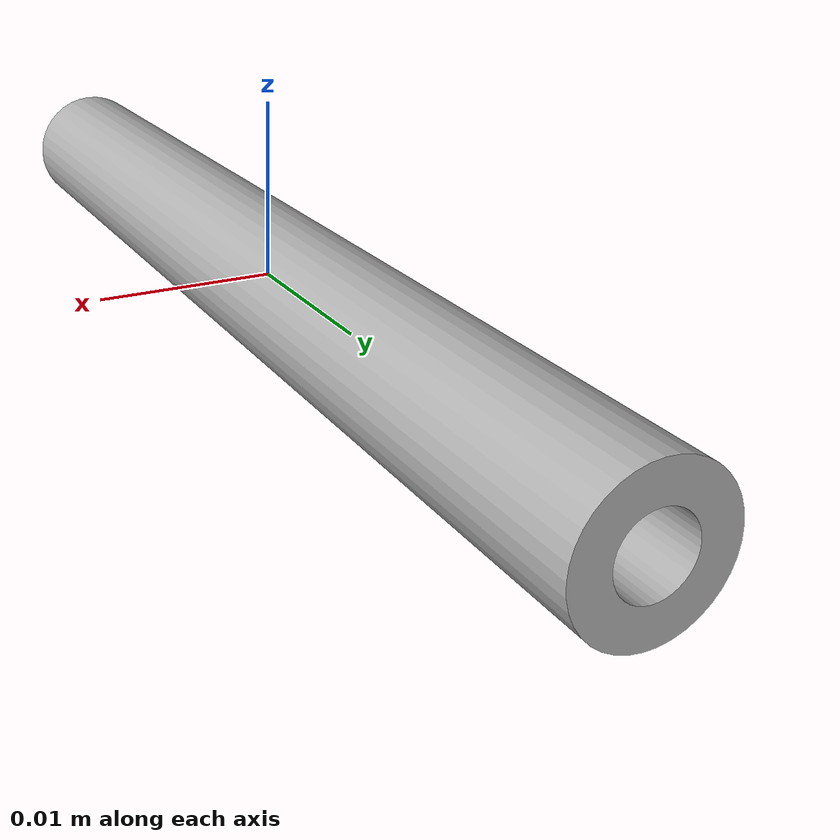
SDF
<?xml version="1.0" ?>
<sdf version="1.6">
  <model name="11)Main Axle">
    <static>true</static>
    <link name="link">
      <collision name="collision">
        <geometry>
          <mesh>
            <scale>0.001 0.001 0.001</scale>
            <uri>model://11)Main Axle/11)Main Axle.stl</uri>
          </mesh>
        </geometry>
      </collision>
      <visual name="visual">
        <geometry>
          <mesh>
            <scale>0.001 0.001 0.001</scale>
            <uri>model://11)Main Axle/11)Main Axle.dae</uri>
          </mesh>
        </geometry>
      </visual>
    </link>
  </model>
</sdf>
